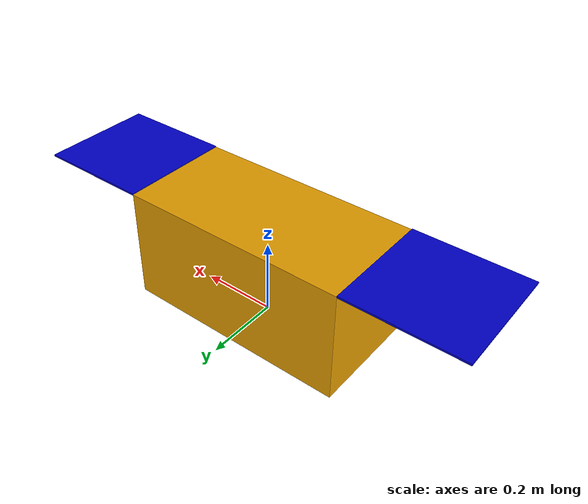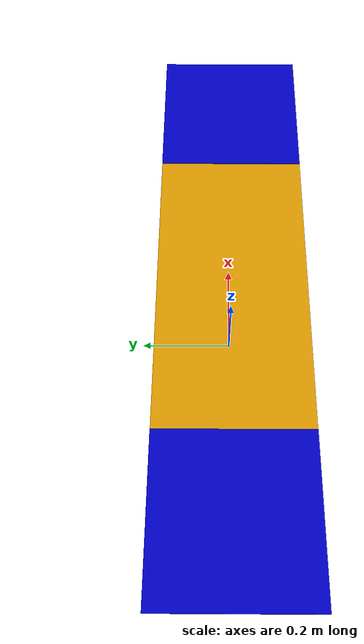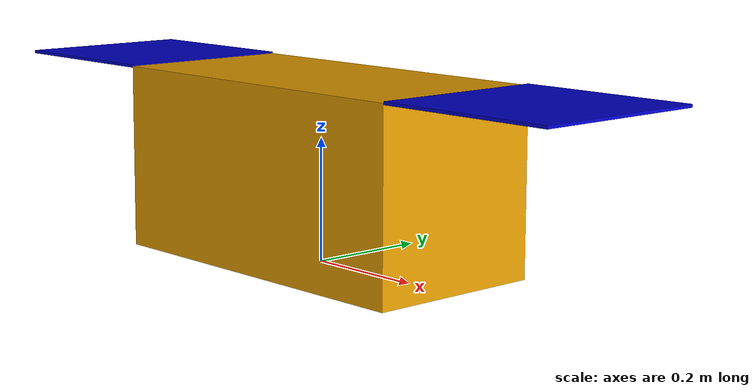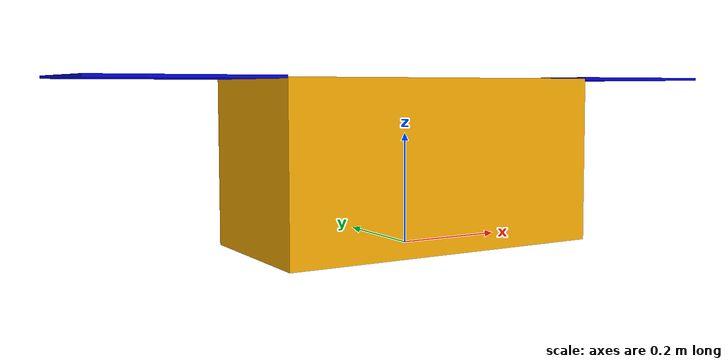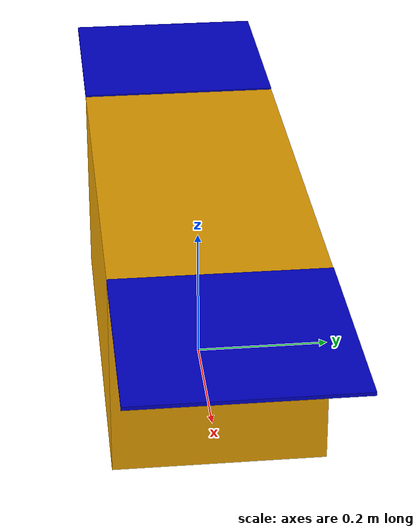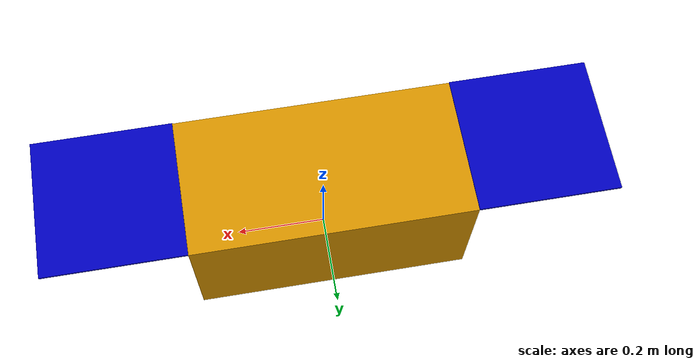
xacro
<?xml version="1.0"?>
<robot xmlns:xacro="http://www.ros.org/wiki/xacro" name="cardboard">

    <xacro:property name="length" value=".60" />
    <xacro:property name="width" value=".30" />
    <xacro:property name="height" value=".30" />
    <xacro:property name="flap_length" value=".30" />
    <xacro:property name="thickness" value=".005" />
    <xacro:property name="deg180" value="3.1415926535897931" />
    <xacro:property name="deg90" value="1.5707963267948966" />

    <link name="base_link">
    <visual>
        <geometry>
            <box size="${length} ${width} ${height}"/>
        </geometry>
        <origin rpy="0 0 0" xyz="0 0 ${height/2}"/>
    </visual>
    </link>

    <link name="flap_1">
        <visual>
            <geometry>
                <box size="${flap_length} ${width} ${thickness}"/>
            </geometry>
            <origin rpy="0 0 0" xyz="${flap_length/2} 0 0"/>
            <material name="blue">
                <color rgba="0 0 .8 1"/>
            </material>
        </visual>
    </link>

    <joint name="joint_1" type="revolute">
        <axis xyz="0 1 0"/>
        <limit effort="1000.0" lower="${-deg180}" upper="${deg90}" velocity="0.5"/>
        <origin rpy="0 0 0" xyz="${length/2} 0.0 ${height}"/>
        <parent link="base_link"/>
        <child link="flap_1"/>
    </joint>

    <link name="flap_2">
        <visual>
            <geometry>
                <box size="${flap_length} ${width} ${thickness}"/>
            </geometry>
            <origin rpy="0 0 0" xyz="${-flap_length/2} 0 0"/>
            <material name="blue">
                <color rgba="0 0 .8 1"/>
            </material>
        </visual>
    </link>

    <joint name="joint_2" type="revolute">
        <axis xyz="0 1 0"/>
        <limit effort="1000.0" lower="${-deg90}" upper="${deg180}" velocity="0.5"/>
        <origin rpy="0 0 0" xyz="${-length/2} 0.0 ${height}"/>
        <parent link="base_link"/>
        <child link="flap_2"/>
    </joint>

</robot>
